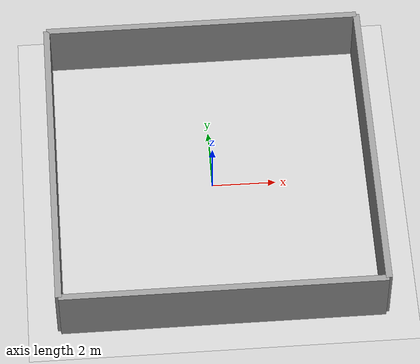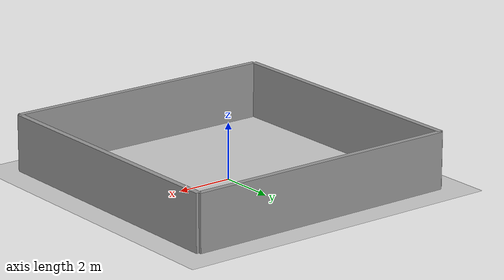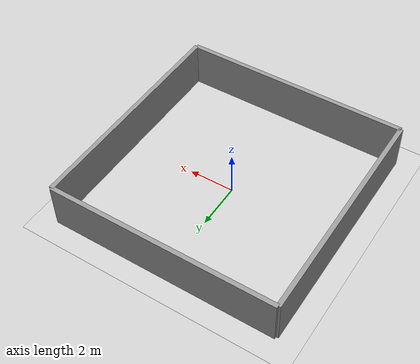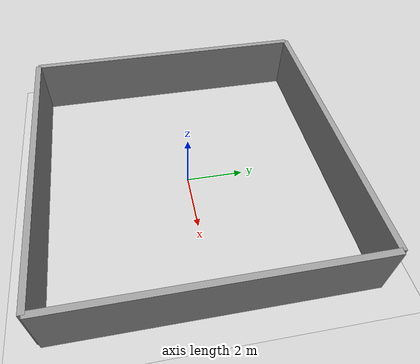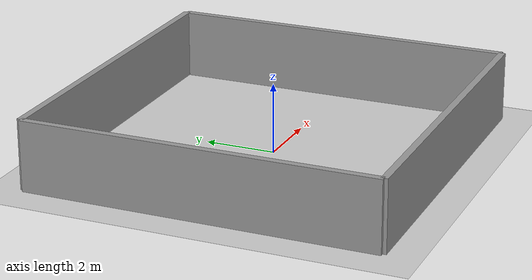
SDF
<?xml version="1.0" ?>
<sdf version="1.8">
  <world name="controller_test">
    <gravity>0 0 -9.81</gravity>
    <atmosphere type="adiabatic"/>

    <physics name="dart_physics" default="true" type="dart">
      <max_step_size>0.001</max_step_size>
      <real_time_factor>1.0</real_time_factor>
      <real_time_update_rate>1000</real_time_update_rate>
      <max_contacts>50</max_contacts>
      <dart>
        <collision_detector>bullet</collision_detector>
        <solver>
          <solver_type>dantzig</solver_type>
        </solver>
      </dart>
    </physics>

    <scene>
      <ambient>0.4 0.4 0.4 1</ambient>
      <background>0.7 0.7 0.7 1</background>
      <shadows>true</shadows>
    </scene>

    <light type="directional" name="sun">
      <cast_shadows>true</cast_shadows>
      <pose>0 0 10 0 0 0</pose>
      <diffuse>0.8 0.8 0.8 1</diffuse>
      <specular>0.8 0.8 0.8 1</specular>
      <attenuation>
        <range>1000</range>
        <constant>0.9</constant>
        <linear>0.01</linear>
        <quadratic>0.001</quadratic>
      </attenuation>
      <direction>-0.5 0.1 -0.9</direction>
    </light>

    <model name="ground_plane">
      <static>true</static>
      <link name="link">
        <collision name="collision">
          <geometry>
            <plane>
              <normal>0 0 1</normal>
              <size>100 100</size>
            </plane>
          </geometry>
          <surface>
            <friction>
              <ode>
                <mu>0.9</mu>
                <mu2>0.9</mu2>
                <fdir1>0 0 0</fdir1>
                <slip1>0.0</slip1>
                <slip2>0.0</slip2>
              </ode>
            </friction>
            <contact>
              <ode>
                <cfm>0.0001</cfm>
                <erp>0.2</erp>
                <max_vel>100.0</max_vel>
                <min_depth>0.001</min_depth>
              </ode>
            </contact>
          </surface>
        </collision>
        <visual name="visual">
          <geometry>
            <plane>
              <normal>0 0 1</normal>
              <size>100 100</size>
            </plane>
          </geometry>
          <material>
            <ambient>0.8 0.8 0.8 1</ambient>
            <diffuse>0.8 0.8 0.8 1</diffuse>
            <specular>0.8 0.8 0.8 1</specular>
          </material>
        </visual>
      </link>
    </model>

    <!-- North wall -->
    <model name="north_wall">
      <static>true</static>
      <pose>0 5 1 0 0 0</pose>
      <link name="link">
        <collision name="collision">
          <geometry>
            <box>
              <size>10 0.2 2</size>
            </box>
          </geometry>
          <surface>
            <friction>
              <ode>
                <mu>0.7</mu>
                <mu2>0.7</mu2>
              </ode>
            </friction>
            <contact>
              <ode>
                <cfm>0.001</cfm>
                <erp>0.2</erp>
                <max_vel>0.1</max_vel>
                <min_depth>0.001</min_depth>
              </ode>
            </contact>
          </surface>
        </collision>
        <visual name="visual">
          <geometry>
            <box>
              <size>10 0.2 2</size>
            </box>
          </geometry>
          <material>
            <ambient>0.6 0.6 0.6 1</ambient>
            <diffuse>0.6 0.6 0.6 1</diffuse>
          </material>
        </visual>
      </link>
    </model>

    <!-- South wall -->
    <model name="south_wall">
      <static>true</static>
      <pose>0 -5 1 0 0 0</pose>
      <link name="link">
        <collision name="collision">
          <geometry>
            <box>
              <size>10 0.2 2</size>
            </box>
          </geometry>
          <surface>
            <friction>
              <ode>
                <mu>0.7</mu>
                <mu2>0.7</mu2>
              </ode>
            </friction>
            <contact>
              <ode>
                <cfm>0.001</cfm>
                <erp>0.2</erp>
                <max_vel>0.1</max_vel>
                <min_depth>0.001</min_depth>
              </ode>
            </contact>
          </surface>
        </collision>
        <visual name="visual">
          <geometry>
            <box>
              <size>10 0.2 2</size>
            </box>
          </geometry>
          <material>
            <ambient>0.6 0.6 0.6 1</ambient>
            <diffuse>0.6 0.6 0.6 1</diffuse>
          </material>
        </visual>
      </link>
    </model>

    <!-- East wall -->
    <model name="east_wall">
      <static>true</static>
      <pose>5 0 1 0 0 0</pose>
      <link name="link">
        <collision name="collision">
          <geometry>
            <box>
              <size>0.2 10 2</size>
            </box>
          </geometry>
          <surface>
            <friction>
              <ode>
                <mu>0.7</mu>
                <mu2>0.7</mu2>
              </ode>
            </friction>
            <contact>
              <ode>
                <cfm>0.001</cfm>
                <erp>0.2</erp>
                <max_vel>0.1</max_vel>
                <min_depth>0.001</min_depth>
              </ode>
            </contact>
          </surface>
        </collision>
        <visual name="visual">
          <geometry>
            <box>
              <size>0.2 10 2</size>
            </box>
          </geometry>
          <material>
            <ambient>0.6 0.6 0.6 1</ambient>
            <diffuse>0.6 0.6 0.6 1</diffuse>
          </material>
        </visual>
      </link>
    </model>

    <!-- West wall -->
    <model name="west_wall">
      <static>true</static>
      <pose>-5 0 1 0 0 0</pose>
      <link name="link">
        <collision name="collision">
          <geometry>
            <box>
              <size>0.2 10 2</size>
            </box>
          </geometry>
          <surface>
            <friction>
              <ode>
                <mu>0.7</mu>
                <mu2>0.7</mu2>
              </ode>
            </friction>
            <contact>
              <ode>
                <cfm>0.001</cfm>
                <erp>0.2</erp>
                <max_vel>0.1</max_vel>
                <min_depth>0.001</min_depth>
              </ode>
            </contact>
          </surface>
        </collision>
        <visual name="visual">
          <geometry>
            <box>
              <size>0.2 10 2</size>
            </box>
          </geometry>
          <material>
            <ambient>0.6 0.6 0.6 1</ambient>
            <diffuse>0.6 0.6 0.6 1</diffuse>
          </material>
        </visual>
      </link>
    </model>

    <plugin
      filename="gz-sim-physics-system"
      name="gz::sim::systems::Physics">
    </plugin>
    <plugin
      filename="gz-sim-user-commands-system"
      name="gz::sim::systems::UserCommands">
    </plugin>
    <plugin
      filename="gz-sim-scene-broadcaster-system"
      name="gz::sim::systems::SceneBroadcaster">
    </plugin>
    <plugin
      filename="gz-sim-sensors-system"
      name="gz::sim::systems::Sensors">
      <render_engine>ogre2</render_engine>
    </plugin>
    <plugin
      filename="gz-sim-imu-system"
      name="gz::sim::systems::Imu">
    </plugin>

  </world>
</sdf>
